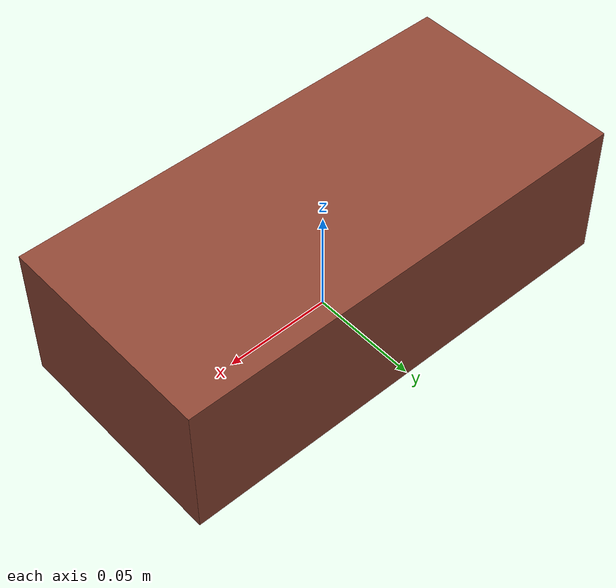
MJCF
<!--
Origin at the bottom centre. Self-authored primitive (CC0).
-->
<mujoco model="brick">
  <asset>
    <material name="mat" rgba="0.55 0.27 0.20 1"/>
  </asset>
  <worldbody>
    <body name="brick">
      <freejoint/>
      <geom name="body" type="box" size="0.1075 0.051 0.0325" pos="0 0 0.0325" mass="2.3"
            material="mat" condim="4" friction="0.9 0.02 0.0005" solimp="0.97 0.995 0.001" solref="0.006 1"/>
    </body>
  </worldbody>
</mujoco>
